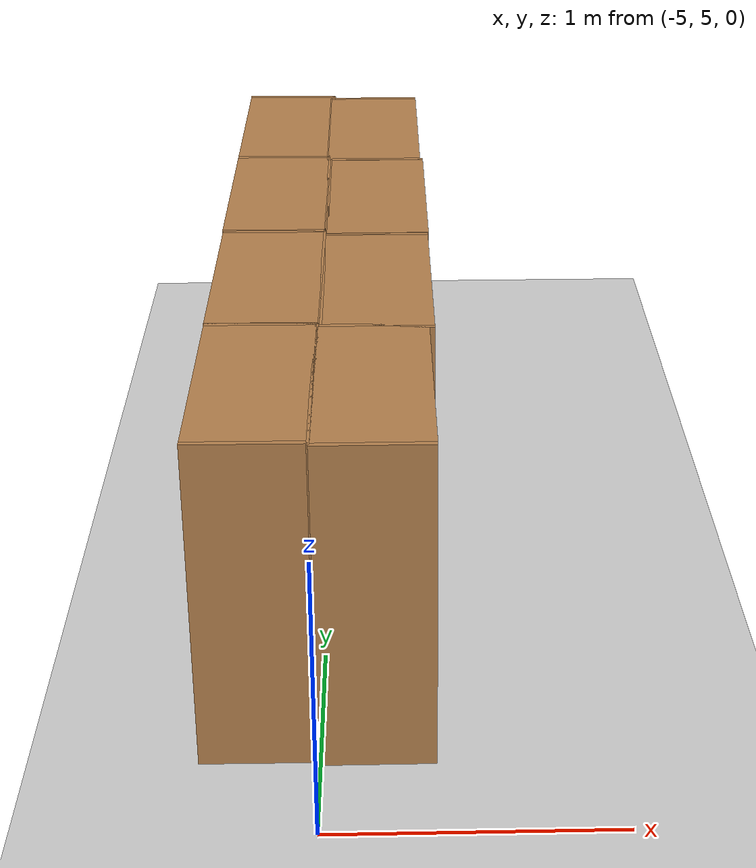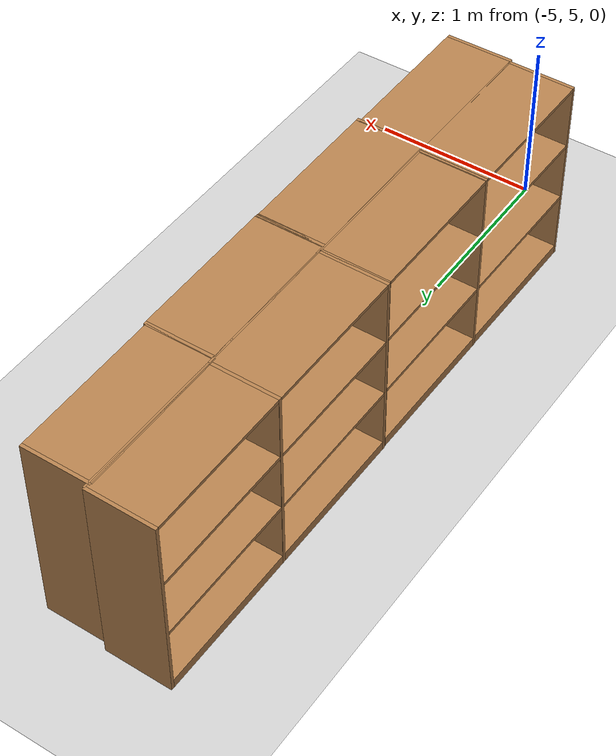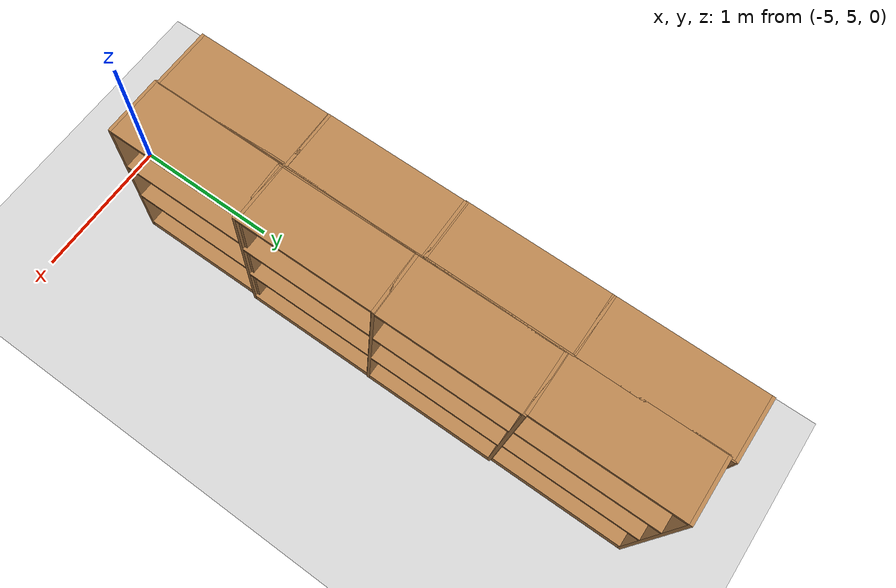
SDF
<sdf version="1.7">
 <world name="library_world">
  <model name="ground_plane">
   <static>1</static>
   <link name="link">
    <collision name="collision">
     <geometry><plane><normal>0 0 1</normal><size>100 100</size></plane></geometry>
     <surface>
      <contact><collide_bitmask>65535</collide_bitmask></contact>
      <friction><ode><mu>100</mu><mu2>50</mu2></ode></friction>
     </surface>
    </collision>
    <visual name="visual">
     <cast_shadows>0</cast_shadows>
     <geometry><plane><normal>0 0 1</normal><size>100 100</size></plane></geometry>
     <material>
      <script><uri>file://media/materials/scripts/gazebo.material</uri><name>Gazebo/Grey</name></script>
     </material>
    </visual>
   </link>
  </model>
  <model name="bookshelf_0_clone_8_clone_4">
   <static>1</static>
   <link name="link">
    <inertial><mass>1</mass></inertial>
    <collision name="back">
     <pose>0 0.005 0.6 0 -0 0</pose>
     <geometry><box><size>0.9 0.01 1.2</size></box></geometry>
    </collision>
    <visual name="visual1">
     <pose>0 0.005 0.6 0 -0 0</pose>
     <geometry><box><size>0.9 0.01 1.2</size></box></geometry>
     <material>
      <script><uri>file://media/materials/scripts/gazebo.material</uri><name>Gazebo/Wood</name></script>
     </material>
    </visual>
    <collision name="left_side">
     <pose>0.45 -0.195 0.6 0 -0 0</pose>
     <geometry><box><size>0.02 0.4 1.2</size></box></geometry>
    </collision>
    <visual name="visual2">
     <pose>0.45 -0.195 0.6 0 -0 0</pose>
     <geometry><box><size>0.02 0.4 1.2</size></box></geometry>
     <material>
      <script><uri>file://media/materials/scripts/gazebo.material</uri><name>Gazebo/Wood</name></script>
     </material>
    </visual>
    <collision name="right_side">
     <pose>-0.45 -0.195 0.6 0 -0 0</pose>
     <geometry><box><size>0.02 0.4 1.2</size></box></geometry>
    </collision>
    <visual name="visual3">
     <pose>-0.45 -0.195 0.6 0 -0 0</pose>
     <geometry><box><size>0.02 0.4 1.2</size></box></geometry>
     <material>
      <script><uri>file://media/materials/scripts/gazebo.material</uri><name>Gazebo/Wood</name></script>
     </material>
    </visual>
    <collision name="bottom">
     <pose>0 -0.195 0.03 0 -0 0</pose>
     <geometry><box><size>0.88 0.4 0.06</size></box></geometry>
    </collision>
    <visual name="visual4">
     <pose>0 -0.195 0.03 0 -0 0</pose>
     <geometry><box><size>0.88 0.4 0.06</size></box></geometry>
     <material>
      <script><uri>file://media/materials/scripts/gazebo.material</uri><name>Gazebo/Wood</name></script>
     </material>
    </visual>
    <collision name="top">
     <pose>0 -0.195 1.19 0 -0 0</pose>
     <geometry><box><size>0.88 0.4 0.02</size></box></geometry>
    </collision>
    <visual name="visual5">
     <pose>0 -0.195 1.19 0 -0 0</pose>
     <geometry><box><size>0.88 0.4 0.02</size></box></geometry>
     <material>
      <script><uri>file://media/materials/scripts/gazebo.material</uri><name>Gazebo/Wood</name></script>
     </material>
    </visual>
    <collision name="low_shelf">
     <pose>0 -0.195 0.43 0 -0 0</pose>
     <geometry><box><size>0.88 0.4 0.02</size></box></geometry>
    </collision>
    <visual name="visual6">
     <pose>0 -0.195 0.43 0 -0 0</pose>
     <geometry><box><size>0.88 0.4 0.02</size></box></geometry>
     <material>
      <script><uri>file://media/materials/scripts/gazebo.material</uri><name>Gazebo/Wood</name></script>
     </material>
    </visual>
    <collision name="high_shelf">
     <pose>0 -0.195 0.8 0 -0 0</pose>
     <geometry><box><size>0.88 0.4 0.02</size></box></geometry>
    </collision>
    <visual name="visual7">
     <pose>0 -0.195 0.8 0 -0 0</pose>
     <geometry><box><size>0.88 0.4 0.02</size></box></geometry>
     <material>
      <script><uri>file://media/materials/scripts/gazebo.material</uri><name>Gazebo/Wood</name></script>
     </material>
    </visual>
   </link>
   <pose>-5.00485 8.53788 0 0 0 -1.57537</pose>
  </model>
  <model name="bookshelf_0_clone_8_clone_5">
   <static>1</static>
   <link name="link">
    <inertial><mass>1</mass></inertial>
    <collision name="back">
     <pose>0 0.005 0.6 0 -0 0</pose>
     <geometry><box><size>0.9 0.01 1.2</size></box></geometry>
    </collision>
    <visual name="visual1">
     <pose>0 0.005 0.6 0 -0 0</pose>
     <geometry><box><size>0.9 0.01 1.2</size></box></geometry>
     <material>
      <script><uri>file://media/materials/scripts/gazebo.material</uri><name>Gazebo/Wood</name></script>
     </material>
    </visual>
    <collision name="left_side">
     <pose>0.45 -0.195 0.6 0 -0 0</pose>
     <geometry><box><size>0.02 0.4 1.2</size></box></geometry>
    </collision>
    <visual name="visual2">
     <pose>0.45 -0.195 0.6 0 -0 0</pose>
     <geometry><box><size>0.02 0.4 1.2</size></box></geometry>
     <material>
      <script><uri>file://media/materials/scripts/gazebo.material</uri><name>Gazebo/Wood</name></script>
     </material>
    </visual>
    <collision name="right_side">
     <pose>-0.45 -0.195 0.6 0 -0 0</pose>
     <geometry><box><size>0.02 0.4 1.2</size></box></geometry>
    </collision>
    <visual name="visual3">
     <pose>-0.45 -0.195 0.6 0 -0 0</pose>
     <geometry><box><size>0.02 0.4 1.2</size></box></geometry>
     <material>
      <script><uri>file://media/materials/scripts/gazebo.material</uri><name>Gazebo/Wood</name></script>
     </material>
    </visual>
    <collision name="bottom">
     <pose>0 -0.195 0.03 0 -0 0</pose>
     <geometry><box><size>0.88 0.4 0.06</size></box></geometry>
    </collision>
    <visual name="visual4">
     <pose>0 -0.195 0.03 0 -0 0</pose>
     <geometry><box><size>0.88 0.4 0.06</size></box></geometry>
     <material>
      <script><uri>file://media/materials/scripts/gazebo.material</uri><name>Gazebo/Wood</name></script>
     </material>
    </visual>
    <collision name="top">
     <pose>0 -0.195 1.19 0 -0 0</pose>
     <geometry><box><size>0.88 0.4 0.02</size></box></geometry>
    </collision>
    <visual name="visual5">
     <pose>0 -0.195 1.19 0 -0 0</pose>
     <geometry><box><size>0.88 0.4 0.02</size></box></geometry>
     <material>
      <script><uri>file://media/materials/scripts/gazebo.material</uri><name>Gazebo/Wood</name></script>
     </material>
    </visual>
    <collision name="low_shelf">
     <pose>0 -0.195 0.43 0 -0 0</pose>
     <geometry><box><size>0.88 0.4 0.02</size></box></geometry>
    </collision>
    <visual name="visual6">
     <pose>0 -0.195 0.43 0 -0 0</pose>
     <geometry><box><size>0.88 0.4 0.02</size></box></geometry>
     <material>
      <script><uri>file://media/materials/scripts/gazebo.material</uri><name>Gazebo/Wood</name></script>
     </material>
    </visual>
    <collision name="high_shelf">
     <pose>0 -0.195 0.8 0 -0 0</pose>
     <geometry><box><size>0.88 0.4 0.02</size></box></geometry>
    </collision>
    <visual name="visual7">
     <pose>0 -0.195 0.8 0 -0 0</pose>
     <geometry><box><size>0.88 0.4 0.02</size></box></geometry>
     <material>
      <script><uri>file://media/materials/scripts/gazebo.material</uri><name>Gazebo/Wood</name></script>
     </material>
    </visual>
   </link>
   <pose>-5.00895 7.64 0 0 0 -1.57537</pose>
  </model>
  <model name="bookshelf_0_clone_8_clone_6">
   <static>1</static>
   <link name="link">
    <inertial><mass>1</mass></inertial>
    <collision name="back">
     <pose>0 0.005 0.6 0 -0 0</pose>
     <geometry><box><size>0.9 0.01 1.2</size></box></geometry>
    </collision>
    <visual name="visual1">
     <pose>0 0.005 0.6 0 -0 0</pose>
     <geometry><box><size>0.9 0.01 1.2</size></box></geometry>
     <material>
      <script><uri>file://media/materials/scripts/gazebo.material</uri><name>Gazebo/Wood</name></script>
     </material>
    </visual>
    <collision name="left_side">
     <pose>0.45 -0.195 0.6 0 -0 0</pose>
     <geometry><box><size>0.02 0.4 1.2</size></box></geometry>
    </collision>
    <visual name="visual2">
     <pose>0.45 -0.195 0.6 0 -0 0</pose>
     <geometry><box><size>0.02 0.4 1.2</size></box></geometry>
     <material>
      <script><uri>file://media/materials/scripts/gazebo.material</uri><name>Gazebo/Wood</name></script>
     </material>
    </visual>
    <collision name="right_side">
     <pose>-0.45 -0.195 0.6 0 -0 0</pose>
     <geometry><box><size>0.02 0.4 1.2</size></box></geometry>
    </collision>
    <visual name="visual3">
     <pose>-0.45 -0.195 0.6 0 -0 0</pose>
     <geometry><box><size>0.02 0.4 1.2</size></box></geometry>
     <material>
      <script><uri>file://media/materials/scripts/gazebo.material</uri><name>Gazebo/Wood</name></script>
     </material>
    </visual>
    <collision name="bottom">
     <pose>0 -0.195 0.03 0 -0 0</pose>
     <geometry><box><size>0.88 0.4 0.06</size></box></geometry>
    </collision>
    <visual name="visual4">
     <pose>0 -0.195 0.03 0 -0 0</pose>
     <geometry><box><size>0.88 0.4 0.06</size></box></geometry>
     <material>
      <script><uri>file://media/materials/scripts/gazebo.material</uri><name>Gazebo/Wood</name></script>
     </material>
    </visual>
    <collision name="top">
     <pose>0 -0.195 1.19 0 -0 0</pose>
     <geometry><box><size>0.88 0.4 0.02</size></box></geometry>
    </collision>
    <visual name="visual5">
     <pose>0 -0.195 1.19 0 -0 0</pose>
     <geometry><box><size>0.88 0.4 0.02</size></box></geometry>
     <material>
      <script><uri>file://media/materials/scripts/gazebo.material</uri><name>Gazebo/Wood</name></script>
     </material>
    </visual>
    <collision name="low_shelf">
     <pose>0 -0.195 0.43 0 -0 0</pose>
     <geometry><box><size>0.88 0.4 0.02</size></box></geometry>
    </collision>
    <visual name="visual6">
     <pose>0 -0.195 0.43 0 -0 0</pose>
     <geometry><box><size>0.88 0.4 0.02</size></box></geometry>
     <material>
      <script><uri>file://media/materials/scripts/gazebo.material</uri><name>Gazebo/Wood</name></script>
     </material>
    </visual>
    <collision name="high_shelf">
     <pose>0 -0.195 0.8 0 -0 0</pose>
     <geometry><box><size>0.88 0.4 0.02</size></box></geometry>
    </collision>
    <visual name="visual7">
     <pose>0 -0.195 0.8 0 -0 0</pose>
     <geometry><box><size>0.88 0.4 0.02</size></box></geometry>
     <material>
      <script><uri>file://media/materials/scripts/gazebo.material</uri><name>Gazebo/Wood</name></script>
     </material>
    </visual>
   </link>
   <pose>-5.00978 6.73031 0 0 0 -1.57537</pose>
  </model>
  <model name="bookshelf_0_clone_8_clone_7">
   <static>1</static>
   <link name="link">
    <inertial><mass>1</mass></inertial>
    <collision name="back">
     <pose>0 0.005 0.6 0 -0 0</pose>
     <geometry><box><size>0.9 0.01 1.2</size></box></geometry>
    </collision>
    <visual name="visual1">
     <pose>0 0.005 0.6 0 -0 0</pose>
     <geometry><box><size>0.9 0.01 1.2</size></box></geometry>
     <material>
      <script><uri>file://media/materials/scripts/gazebo.material</uri><name>Gazebo/Wood</name></script>
     </material>
    </visual>
    <collision name="left_side">
     <pose>0.45 -0.195 0.6 0 -0 0</pose>
     <geometry><box><size>0.02 0.4 1.2</size></box></geometry>
    </collision>
    <visual name="visual2">
     <pose>0.45 -0.195 0.6 0 -0 0</pose>
     <geometry><box><size>0.02 0.4 1.2</size></box></geometry>
     <material>
      <script><uri>file://media/materials/scripts/gazebo.material</uri><name>Gazebo/Wood</name></script>
     </material>
    </visual>
    <collision name="right_side">
     <pose>-0.45 -0.195 0.6 0 -0 0</pose>
     <geometry><box><size>0.02 0.4 1.2</size></box></geometry>
    </collision>
    <visual name="visual3">
     <pose>-0.45 -0.195 0.6 0 -0 0</pose>
     <geometry><box><size>0.02 0.4 1.2</size></box></geometry>
     <material>
      <script><uri>file://media/materials/scripts/gazebo.material</uri><name>Gazebo/Wood</name></script>
     </material>
    </visual>
    <collision name="bottom">
     <pose>0 -0.195 0.03 0 -0 0</pose>
     <geometry><box><size>0.88 0.4 0.06</size></box></geometry>
    </collision>
    <visual name="visual4">
     <pose>0 -0.195 0.03 0 -0 0</pose>
     <geometry><box><size>0.88 0.4 0.06</size></box></geometry>
     <material>
      <script><uri>file://media/materials/scripts/gazebo.material</uri><name>Gazebo/Wood</name></script>
     </material>
    </visual>
    <collision name="top">
     <pose>0 -0.195 1.19 0 -0 0</pose>
     <geometry><box><size>0.88 0.4 0.02</size></box></geometry>
    </collision>
    <visual name="visual5">
     <pose>0 -0.195 1.19 0 -0 0</pose>
     <geometry><box><size>0.88 0.4 0.02</size></box></geometry>
     <material>
      <script><uri>file://media/materials/scripts/gazebo.material</uri><name>Gazebo/Wood</name></script>
     </material>
    </visual>
    <collision name="low_shelf">
     <pose>0 -0.195 0.43 0 -0 0</pose>
     <geometry><box><size>0.88 0.4 0.02</size></box></geometry>
    </collision>
    <visual name="visual6">
     <pose>0 -0.195 0.43 0 -0 0</pose>
     <geometry><box><size>0.88 0.4 0.02</size></box></geometry>
     <material>
      <script><uri>file://media/materials/scripts/gazebo.material</uri><name>Gazebo/Wood</name></script>
     </material>
    </visual>
    <collision name="high_shelf">
     <pose>0 -0.195 0.8 0 -0 0</pose>
     <geometry><box><size>0.88 0.4 0.02</size></box></geometry>
    </collision>
    <visual name="visual7">
     <pose>0 -0.195 0.8 0 -0 0</pose>
     <geometry><box><size>0.88 0.4 0.02</size></box></geometry>
     <material>
      <script><uri>file://media/materials/scripts/gazebo.material</uri><name>Gazebo/Wood</name></script>
     </material>
    </visual>
   </link>
   <pose>-5.01238 5.82855 0 0 0 -1.57537</pose>
  </model>
  <model name="bookshelf_0_clone_2_clone_4">
   <static>1</static>
   <link name="link">
    <inertial><mass>1</mass></inertial>
    <collision name="back">
     <pose>0 0.005 0.6 0 -0 0</pose>
     <geometry><box><size>0.9 0.01 1.2</size></box></geometry>
    </collision>
    <visual name="visual1">
     <pose>0 0.005 0.6 0 -0 0</pose>
     <geometry><box><size>0.9 0.01 1.2</size></box></geometry>
     <material>
      <script><uri>file://media/materials/scripts/gazebo.material</uri><name>Gazebo/Wood</name></script>
     </material>
    </visual>
    <collision name="left_side">
     <pose>0.45 -0.195 0.6 0 -0 0</pose>
     <geometry><box><size>0.02 0.4 1.2</size></box></geometry>
    </collision>
    <visual name="visual2">
     <pose>0.45 -0.195 0.6 0 -0 0</pose>
     <geometry><box><size>0.02 0.4 1.2</size></box></geometry>
     <material>
      <script><uri>file://media/materials/scripts/gazebo.material</uri><name>Gazebo/Wood</name></script>
     </material>
    </visual>
    <collision name="right_side">
     <pose>-0.45 -0.195 0.6 0 -0 0</pose>
     <geometry><box><size>0.02 0.4 1.2</size></box></geometry>
    </collision>
    <visual name="visual3">
     <pose>-0.45 -0.195 0.6 0 -0 0</pose>
     <geometry><box><size>0.02 0.4 1.2</size></box></geometry>
     <material>
      <script><uri>file://media/materials/scripts/gazebo.material</uri><name>Gazebo/Wood</name></script>
     </material>
    </visual>
    <collision name="bottom">
     <pose>0 -0.195 0.03 0 -0 0</pose>
     <geometry><box><size>0.88 0.4 0.06</size></box></geometry>
    </collision>
    <visual name="visual4">
     <pose>0 -0.195 0.03 0 -0 0</pose>
     <geometry><box><size>0.88 0.4 0.06</size></box></geometry>
     <material>
      <script><uri>file://media/materials/scripts/gazebo.material</uri><name>Gazebo/Wood</name></script>
     </material>
    </visual>
    <collision name="top">
     <pose>0 -0.195 1.19 0 -0 0</pose>
     <geometry><box><size>0.88 0.4 0.02</size></box></geometry>
    </collision>
    <visual name="visual5">
     <pose>0 -0.195 1.19 0 -0 0</pose>
     <geometry><box><size>0.88 0.4 0.02</size></box></geometry>
     <material>
      <script><uri>file://media/materials/scripts/gazebo.material</uri><name>Gazebo/Wood</name></script>
     </material>
    </visual>
    <collision name="low_shelf">
     <pose>0 -0.195 0.43 0 -0 0</pose>
     <geometry><box><size>0.88 0.4 0.02</size></box></geometry>
    </collision>
    <visual name="visual6">
     <pose>0 -0.195 0.43 0 -0 0</pose>
     <geometry><box><size>0.88 0.4 0.02</size></box></geometry>
     <material>
      <script><uri>file://media/materials/scripts/gazebo.material</uri><name>Gazebo/Wood</name></script>
     </material>
    </visual>
    <collision name="high_shelf">
     <pose>0 -0.195 0.8 0 -0 0</pose>
     <geometry><box><size>0.88 0.4 0.02</size></box></geometry>
    </collision>
    <visual name="visual7">
     <pose>0 -0.195 0.8 0 -0 0</pose>
     <geometry><box><size>0.88 0.4 0.02</size></box></geometry>
     <material>
      <script><uri>file://media/materials/scripts/gazebo.material</uri><name>Gazebo/Wood</name></script>
     </material>
    </visual>
   </link>
   <pose>-5.00561 8.50286 0 0 -0 1.57381</pose>
  </model>
  <model name="bookshelf_0_clone_2_clone_5">
   <static>1</static>
   <link name="link">
    <inertial><mass>1</mass></inertial>
    <collision name="back">
     <pose>0 0.005 0.6 0 -0 0</pose>
     <geometry><box><size>0.9 0.01 1.2</size></box></geometry>
    </collision>
    <visual name="visual1">
     <pose>0 0.005 0.6 0 -0 0</pose>
     <geometry><box><size>0.9 0.01 1.2</size></box></geometry>
     <material>
      <script><uri>file://media/materials/scripts/gazebo.material</uri><name>Gazebo/Wood</name></script>
     </material>
    </visual>
    <collision name="left_side">
     <pose>0.45 -0.195 0.6 0 -0 0</pose>
     <geometry><box><size>0.02 0.4 1.2</size></box></geometry>
    </collision>
    <visual name="visual2">
     <pose>0.45 -0.195 0.6 0 -0 0</pose>
     <geometry><box><size>0.02 0.4 1.2</size></box></geometry>
     <material>
      <script><uri>file://media/materials/scripts/gazebo.material</uri><name>Gazebo/Wood</name></script>
     </material>
    </visual>
    <collision name="right_side">
     <pose>-0.45 -0.195 0.6 0 -0 0</pose>
     <geometry><box><size>0.02 0.4 1.2</size></box></geometry>
    </collision>
    <visual name="visual3">
     <pose>-0.45 -0.195 0.6 0 -0 0</pose>
     <geometry><box><size>0.02 0.4 1.2</size></box></geometry>
     <material>
      <script><uri>file://media/materials/scripts/gazebo.material</uri><name>Gazebo/Wood</name></script>
     </material>
    </visual>
    <collision name="bottom">
     <pose>0 -0.195 0.03 0 -0 0</pose>
     <geometry><box><size>0.88 0.4 0.06</size></box></geometry>
    </collision>
    <visual name="visual4">
     <pose>0 -0.195 0.03 0 -0 0</pose>
     <geometry><box><size>0.88 0.4 0.06</size></box></geometry>
     <material>
      <script><uri>file://media/materials/scripts/gazebo.material</uri><name>Gazebo/Wood</name></script>
     </material>
    </visual>
    <collision name="top">
     <pose>0 -0.195 1.19 0 -0 0</pose>
     <geometry><box><size>0.88 0.4 0.02</size></box></geometry>
    </collision>
    <visual name="visual5">
     <pose>0 -0.195 1.19 0 -0 0</pose>
     <geometry><box><size>0.88 0.4 0.02</size></box></geometry>
     <material>
      <script><uri>file://media/materials/scripts/gazebo.material</uri><name>Gazebo/Wood</name></script>
     </material>
    </visual>
    <collision name="low_shelf">
     <pose>0 -0.195 0.43 0 -0 0</pose>
     <geometry><box><size>0.88 0.4 0.02</size></box></geometry>
    </collision>
    <visual name="visual6">
     <pose>0 -0.195 0.43 0 -0 0</pose>
     <geometry><box><size>0.88 0.4 0.02</size></box></geometry>
     <material>
      <script><uri>file://media/materials/scripts/gazebo.material</uri><name>Gazebo/Wood</name></script>
     </material>
    </visual>
    <collision name="high_shelf">
     <pose>0 -0.195 0.8 0 -0 0</pose>
     <geometry><box><size>0.88 0.4 0.02</size></box></geometry>
    </collision>
    <visual name="visual7">
     <pose>0 -0.195 0.8 0 -0 0</pose>
     <geometry><box><size>0.88 0.4 0.02</size></box></geometry>
     <material>
      <script><uri>file://media/materials/scripts/gazebo.material</uri><name>Gazebo/Wood</name></script>
     </material>
    </visual>
   </link>
   <pose>-4.99149 7.59861 0 0 -0 1.57381</pose>
  </model>
  <model name="bookshelf_0_clone_2_clone_6">
   <static>1</static>
   <link name="link">
    <inertial><mass>1</mass></inertial>
    <collision name="back">
     <pose>0 0.005 0.6 0 -0 0</pose>
     <geometry><box><size>0.9 0.01 1.2</size></box></geometry>
    </collision>
    <visual name="visual1">
     <pose>0 0.005 0.6 0 -0 0</pose>
     <geometry><box><size>0.9 0.01 1.2</size></box></geometry>
     <material>
      <script><uri>file://media/materials/scripts/gazebo.material</uri><name>Gazebo/Wood</name></script>
     </material>
    </visual>
    <collision name="left_side">
     <pose>0.45 -0.195 0.6 0 -0 0</pose>
     <geometry><box><size>0.02 0.4 1.2</size></box></geometry>
    </collision>
    <visual name="visual2">
     <pose>0.45 -0.195 0.6 0 -0 0</pose>
     <geometry><box><size>0.02 0.4 1.2</size></box></geometry>
     <material>
      <script><uri>file://media/materials/scripts/gazebo.material</uri><name>Gazebo/Wood</name></script>
     </material>
    </visual>
    <collision name="right_side">
     <pose>-0.45 -0.195 0.6 0 -0 0</pose>
     <geometry><box><size>0.02 0.4 1.2</size></box></geometry>
    </collision>
    <visual name="visual3">
     <pose>-0.45 -0.195 0.6 0 -0 0</pose>
     <geometry><box><size>0.02 0.4 1.2</size></box></geometry>
     <material>
      <script><uri>file://media/materials/scripts/gazebo.material</uri><name>Gazebo/Wood</name></script>
     </material>
    </visual>
    <collision name="bottom">
     <pose>0 -0.195 0.03 0 -0 0</pose>
     <geometry><box><size>0.88 0.4 0.06</size></box></geometry>
    </collision>
    <visual name="visual4">
     <pose>0 -0.195 0.03 0 -0 0</pose>
     <geometry><box><size>0.88 0.4 0.06</size></box></geometry>
     <material>
      <script><uri>file://media/materials/scripts/gazebo.material</uri><name>Gazebo/Wood</name></script>
     </material>
    </visual>
    <collision name="top">
     <pose>0 -0.195 1.19 0 -0 0</pose>
     <geometry><box><size>0.88 0.4 0.02</size></box></geometry>
    </collision>
    <visual name="visual5">
     <pose>0 -0.195 1.19 0 -0 0</pose>
     <geometry><box><size>0.88 0.4 0.02</size></box></geometry>
     <material>
      <script><uri>file://media/materials/scripts/gazebo.material</uri><name>Gazebo/Wood</name></script>
     </material>
    </visual>
    <collision name="low_shelf">
     <pose>0 -0.195 0.43 0 -0 0</pose>
     <geometry><box><size>0.88 0.4 0.02</size></box></geometry>
    </collision>
    <visual name="visual6">
     <pose>0 -0.195 0.43 0 -0 0</pose>
     <geometry><box><size>0.88 0.4 0.02</size></box></geometry>
     <material>
      <script><uri>file://media/materials/scripts/gazebo.material</uri><name>Gazebo/Wood</name></script>
     </material>
    </visual>
    <collision name="high_shelf">
     <pose>0 -0.195 0.8 0 -0 0</pose>
     <geometry><box><size>0.88 0.4 0.02</size></box></geometry>
    </collision>
    <visual name="visual7">
     <pose>0 -0.195 0.8 0 -0 0</pose>
     <geometry><box><size>0.88 0.4 0.02</size></box></geometry>
     <material>
      <script><uri>file://media/materials/scripts/gazebo.material</uri><name>Gazebo/Wood</name></script>
     </material>
    </visual>
   </link>
   <pose>-4.99257 6.69412 0 0 -0 1.57381</pose>
  </model>
  <model name="bookshelf_0_clone_2_clone_7">
   <static>1</static>
   <link name="link">
    <inertial><mass>1</mass></inertial>
    <collision name="back">
     <pose>0 0.005 0.6 0 -0 0</pose>
     <geometry><box><size>0.9 0.01 1.2</size></box></geometry>
    </collision>
    <visual name="visual1">
     <pose>0 0.005 0.6 0 -0 0</pose>
     <geometry><box><size>0.9 0.01 1.2</size></box></geometry>
     <material>
      <script><uri>file://media/materials/scripts/gazebo.material</uri><name>Gazebo/Wood</name></script>
     </material>
    </visual>
    <collision name="left_side">
     <pose>0.45 -0.195 0.6 0 -0 0</pose>
     <geometry><box><size>0.02 0.4 1.2</size></box></geometry>
    </collision>
    <visual name="visual2">
     <pose>0.45 -0.195 0.6 0 -0 0</pose>
     <geometry><box><size>0.02 0.4 1.2</size></box></geometry>
     <material>
      <script><uri>file://media/materials/scripts/gazebo.material</uri><name>Gazebo/Wood</name></script>
     </material>
    </visual>
    <collision name="right_side">
     <pose>-0.45 -0.195 0.6 0 -0 0</pose>
     <geometry><box><size>0.02 0.4 1.2</size></box></geometry>
    </collision>
    <visual name="visual3">
     <pose>-0.45 -0.195 0.6 0 -0 0</pose>
     <geometry><box><size>0.02 0.4 1.2</size></box></geometry>
     <material>
      <script><uri>file://media/materials/scripts/gazebo.material</uri><name>Gazebo/Wood</name></script>
     </material>
    </visual>
    <collision name="bottom">
     <pose>0 -0.195 0.03 0 -0 0</pose>
     <geometry><box><size>0.88 0.4 0.06</size></box></geometry>
    </collision>
    <visual name="visual4">
     <pose>0 -0.195 0.03 0 -0 0</pose>
     <geometry><box><size>0.88 0.4 0.06</size></box></geometry>
     <material>
      <script><uri>file://media/materials/scripts/gazebo.material</uri><name>Gazebo/Wood</name></script>
     </material>
    </visual>
    <collision name="top">
     <pose>0 -0.195 1.19 0 -0 0</pose>
     <geometry><box><size>0.88 0.4 0.02</size></box></geometry>
    </collision>
    <visual name="visual5">
     <pose>0 -0.195 1.19 0 -0 0</pose>
     <geometry><box><size>0.88 0.4 0.02</size></box></geometry>
     <material>
      <script><uri>file://media/materials/scripts/gazebo.material</uri><name>Gazebo/Wood</name></script>
     </material>
    </visual>
    <collision name="low_shelf">
     <pose>0 -0.195 0.43 0 -0 0</pose>
     <geometry><box><size>0.88 0.4 0.02</size></box></geometry>
    </collision>
    <visual name="visual6">
     <pose>0 -0.195 0.43 0 -0 0</pose>
     <geometry><box><size>0.88 0.4 0.02</size></box></geometry>
     <material>
      <script><uri>file://media/materials/scripts/gazebo.material</uri><name>Gazebo/Wood</name></script>
     </material>
    </visual>
    <collision name="high_shelf">
     <pose>0 -0.195 0.8 0 -0 0</pose>
     <geometry><box><size>0.88 0.4 0.02</size></box></geometry>
    </collision>
    <visual name="visual7">
     <pose>0 -0.195 0.8 0 -0 0</pose>
     <geometry><box><size>0.88 0.4 0.02</size></box></geometry>
     <material>
      <script><uri>file://media/materials/scripts/gazebo.material</uri><name>Gazebo/Wood</name></script>
     </material>
    </visual>
   </link>
   <pose>-5.00928 5.81214 0 0 -0 1.57381</pose>
  </model>
 </world>
</sdf>
